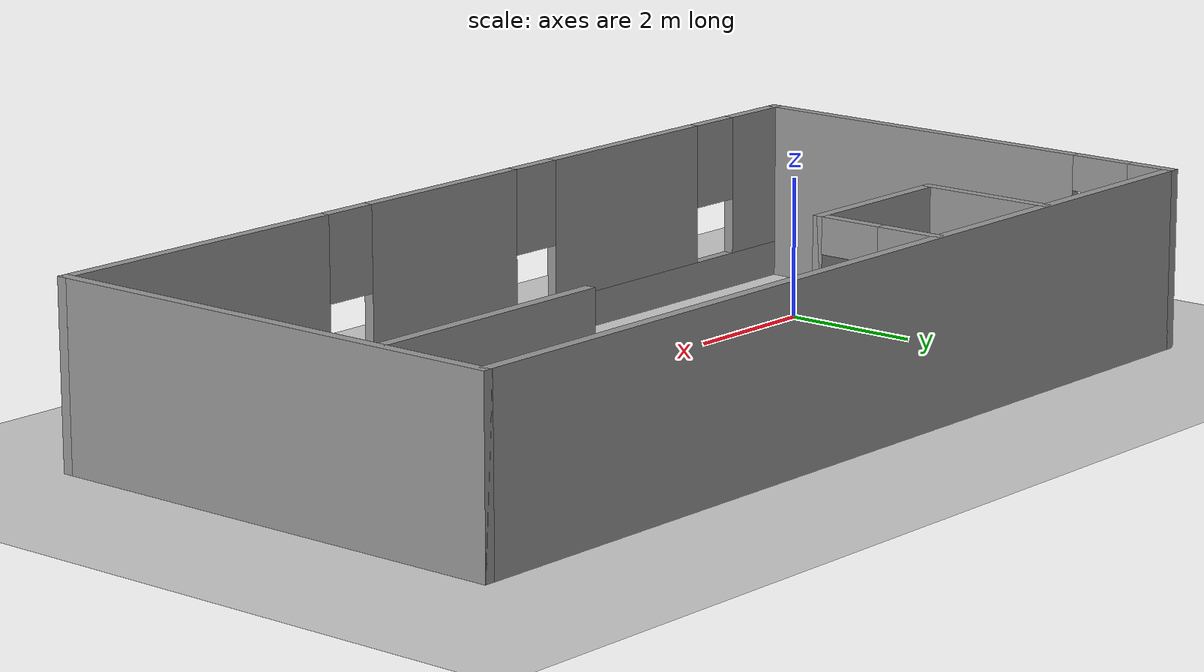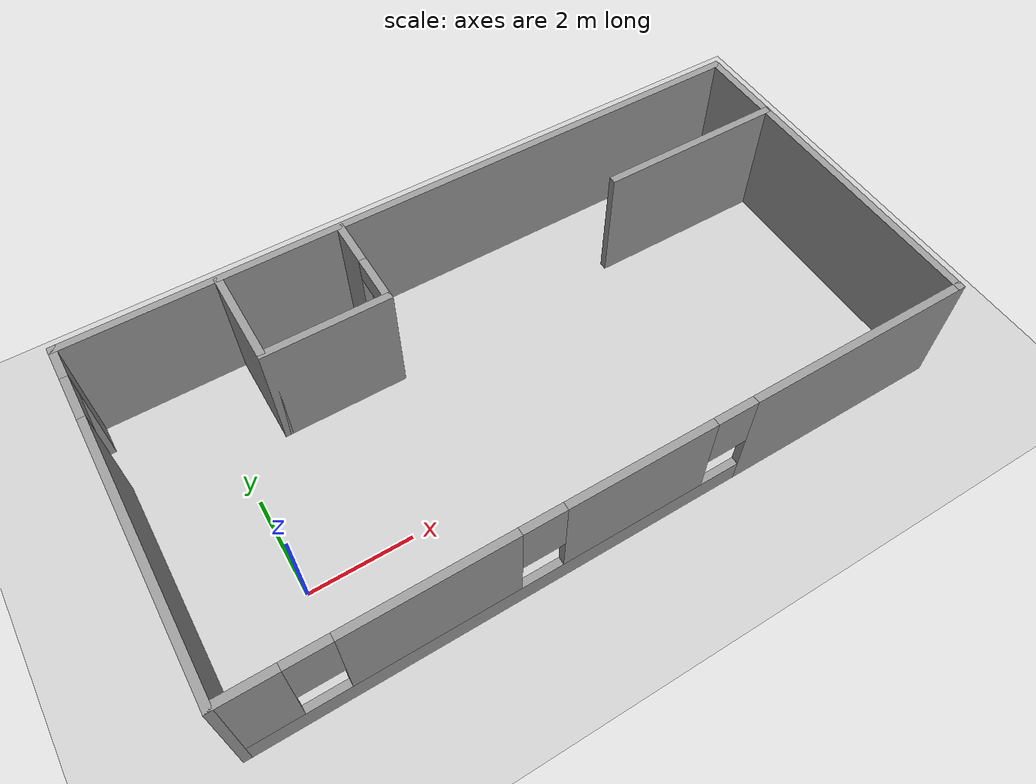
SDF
<sdf version="1.7">
 <world name="default">
  <light name="sun" type="directional">
   <pose>0 0 10 0 -0 0</pose>
   <diffuse>0.8 0.8 0.8 1</diffuse>
   <specular>0.2 0.2 0.2 1</specular>
   <attenuation>
    <range>1000</range>
    <constant>0.9</constant>
    <linear>0.01</linear>
    <quadratic>0.001</quadratic>
   </attenuation>
   <direction>-0.5 0.1 -0.9</direction>
   <spot><inner_angle>0</inner_angle><outer_angle>0</outer_angle><falloff>0</falloff></spot>
  </light>
  <model name="ground_plane">
   <static>1</static>
   <link name="link">
    <collision name="collision">
     <geometry><plane><normal>0 0 1</normal><size>100 100</size></plane></geometry>
     <surface>
      <contact><collide_bitmask>65535</collide_bitmask></contact>
      <friction><ode><mu>100</mu><mu2>50</mu2></ode></friction>
     </surface>
    </collision>
    <visual name="visual">
     <cast_shadows>0</cast_shadows>
     <geometry><plane><normal>0 0 1</normal><size>100 100</size></plane></geometry>
     <material>
      <script><uri>file://media/materials/scripts/gazebo.material</uri><name>Gazebo/Grey</name></script>
     </material>
    </visual>
   </link>
  </model>
  <gravity>0 0 -9.8</gravity>
  <magnetic_field>6e-06 2.3e-05 -4.2e-05</magnetic_field>
  <atmosphere type="adiabatic"/>
  <physics type="ode">
   <max_step_size>0.001</max_step_size>
   <real_time_factor>1</real_time_factor>
   <real_time_update_rate>1000</real_time_update_rate>
  </physics>
  <scene><ambient>0.4 0.4 0.4 1</ambient><background>0.7 0.7 0.7 1</background><shadows>1</shadows></scene>
  <audio><device>default</device></audio>
  <spherical_coordinates>
   <surface_model>EARTH_WGS84</surface_model>
   <latitude_deg>0</latitude_deg>
   <longitude_deg>0</longitude_deg>
   <elevation>0</elevation>
   <heading_deg>0</heading_deg>
  </spherical_coordinates>
  <model name="mapss">
   <pose>5.01979 1.54624 0 0 -0 0</pose>
   <link name="Wall_0">
    <pose>-6.925 0 0 0 -0 1.5708</pose>
    <visual name="Wall_0_Visual_0">
     <pose>-0.808769 0 1.25 0 -0 0</pose>
     <geometry><box><size>5.38246 0.15 2.5</size></box></geometry>
     <material>
      <script><uri>file://media/materials/scripts/gazebo.material</uri><name>Gazebo/Grey</name></script>
      <ambient>1 1 1 1</ambient>
     </material>
     <meta><layer>0</layer></meta>
    </visual>
    <collision name="Wall_0_Collision_0">
     <geometry><box><size>5.38246 0.15 2.5</size></box></geometry>
     <pose>-0.808769 0 1.25 0 -0 0</pose>
    </collision>
    <visual name="Wall_0_Visual_1">
     <pose>3.14123 0 1.25 0 -0 0</pose>
     <geometry><box><size>0.717538 0.15 2.5</size></box></geometry>
     <material>
      <script><uri>file://media/materials/scripts/gazebo.material</uri><name>Gazebo/Grey</name></script>
      <ambient>1 1 1 1</ambient>
     </material>
     <meta><layer>0</layer></meta>
    </visual>
    <collision name="Wall_0_Collision_1">
     <geometry><box><size>0.717538 0.15 2.5</size></box></geometry>
     <pose>3.14123 0 1.25 0 -0 0</pose>
    </collision>
    <visual name="Wall_0_Visual_2">
     <pose>2.33246 0 2.25 0 -0 0</pose>
     <geometry><box><size>0.9 0.15 0.5</size></box></geometry>
     <material>
      <script><uri>file://media/materials/scripts/gazebo.material</uri><name>Gazebo/Grey</name></script>
      <ambient>1 1 1 1</ambient>
     </material>
     <meta><layer>0</layer></meta>
    </visual>
    <collision name="Wall_0_Collision_2">
     <geometry><box><size>0.9 0.15 0.5</size></box></geometry>
     <pose>2.33246 0 2.25 0 -0 0</pose>
    </collision>
   </link>
   <link name="Wall_1">
    <collision name="Wall_1_Collision">
     <geometry><box><size>14 0.15 2.5</size></box></geometry>
     <pose>0 0 1.25 0 -0 0</pose>
    </collision>
    <visual name="Wall_1_Visual">
     <pose>0 0 1.25 0 -0 0</pose>
     <geometry><box><size>14 0.15 2.5</size></box></geometry>
     <material>
      <script><uri>file://media/materials/scripts/gazebo.material</uri><name>Gazebo/Grey</name></script>
      <ambient>1 1 1 1</ambient>
     </material>
     <meta><layer>0</layer></meta>
    </visual>
    <pose>0 3.425 0 0 -0 0</pose>
   </link>
   <link name="Wall_2">
    <collision name="Wall_2_Collision">
     <geometry><box><size>7 0.15 2.5</size></box></geometry>
     <pose>0 0 1.25 0 -0 0</pose>
    </collision>
    <visual name="Wall_2_Visual">
     <pose>0 0 1.25 0 -0 0</pose>
     <geometry><box><size>7 0.15 2.5</size></box></geometry>
     <material>
      <script><uri>file://media/materials/scripts/gazebo.material</uri><name>Gazebo/Grey</name></script>
      <ambient>1 1 1 1</ambient>
     </material>
     <meta><layer>0</layer></meta>
    </visual>
    <pose>6.925 0 0 0 -0 -1.5708</pose>
   </link>
   <link name="Wall_3">
    <pose>0 -3.425 0 0 -0 3.14159</pose>
    <visual name="Wall_3_Visual_0">
     <pose>-4.71794 0 1.25 0 -0 0</pose>
     <geometry><box><size>4.56412 0.15 2.5</size></box></geometry>
     <material>
      <script><uri>file://media/materials/scripts/gazebo.material</uri><name>Gazebo/Grey</name></script>
      <ambient>1 1 1 1</ambient>
     </material>
     <meta><layer>0</layer></meta>
    </visual>
    <collision name="Wall_3_Collision_0">
     <geometry><box><size>4.56412 0.15 2.5</size></box></geometry>
     <pose>-4.71794 0 1.25 0 -0 0</pose>
    </collision>
    <visual name="Wall_3_Visual_1">
     <pose>2.28206 0 0.25 0 -0 0</pose>
     <geometry><box><size>9.43588 0.15 0.5</size></box></geometry>
     <material>
      <script><uri>file://media/materials/scripts/gazebo.material</uri><name>Gazebo/Grey</name></script>
      <ambient>1 1 1 1</ambient>
     </material>
     <meta><layer>0</layer></meta>
    </visual>
    <collision name="Wall_3_Collision_1">
     <geometry><box><size>9.43588 0.15 0.5</size></box></geometry>
     <pose>2.28206 0 0.25 0 -0 0</pose>
    </collision>
    <visual name="Wall_3_Visual_2">
     <pose>-0.216912 0 1.5 0 -0 0</pose>
     <geometry><box><size>2.83793 0.15 2</size></box></geometry>
     <material>
      <script><uri>file://media/materials/scripts/gazebo.material</uri><name>Gazebo/Grey</name></script>
      <ambient>1 1 1 1</ambient>
     </material>
     <meta><layer>0</layer></meta>
    </visual>
    <collision name="Wall_3_Collision_2">
     <geometry><box><size>2.83793 0.15 2</size></box></geometry>
     <pose>-0.216912 0 1.5 0 -0 0</pose>
    </collision>
    <visual name="Wall_3_Visual_3">
     <pose>3.53471 0 1.5 0 -0 0</pose>
     <geometry><box><size>3.0653 0.15 2</size></box></geometry>
     <material>
      <script><uri>file://media/materials/scripts/gazebo.material</uri><name>Gazebo/Grey</name></script>
      <ambient>1 1 1 1</ambient>
     </material>
     <meta><layer>0</layer></meta>
    </visual>
    <collision name="Wall_3_Collision_3">
     <geometry><box><size>3.0653 0.15 2</size></box></geometry>
     <pose>3.53471 0 1.5 0 -0 0</pose>
    </collision>
    <visual name="Wall_3_Visual_4">
     <pose>6.43368 0 1.5 0 -0 0</pose>
     <geometry><box><size>1.13264 0.15 2</size></box></geometry>
     <material>
      <script><uri>file://media/materials/scripts/gazebo.material</uri><name>Gazebo/Grey</name></script>
      <ambient>1 1 1 1</ambient>
     </material>
     <meta><layer>0</layer></meta>
    </visual>
    <collision name="Wall_3_Collision_4">
     <geometry><box><size>1.13264 0.15 2</size></box></geometry>
     <pose>6.43368 0 1.5 0 -0 0</pose>
    </collision>
    <visual name="Wall_3_Visual_5">
     <pose>-2.03588 0 1.9 0 -0 0</pose>
     <geometry><box><size>0.8 0.15 1.2</size></box></geometry>
     <material>
      <script><uri>file://media/materials/scripts/gazebo.material</uri><name>Gazebo/Grey</name></script>
      <ambient>1 1 1 1</ambient>
     </material>
     <meta><layer>0</layer></meta>
    </visual>
    <collision name="Wall_3_Collision_5">
     <geometry><box><size>0.8 0.15 1.2</size></box></geometry>
     <pose>-2.03588 0 1.9 0 -0 0</pose>
    </collision>
    <visual name="Wall_3_Visual_6">
     <pose>1.60206 0 1.9 0 -0 0</pose>
     <geometry><box><size>0.8 0.15 1.2</size></box></geometry>
     <material>
      <script><uri>file://media/materials/scripts/gazebo.material</uri><name>Gazebo/Grey</name></script>
      <ambient>1 1 1 1</ambient>
     </material>
     <meta><layer>0</layer></meta>
    </visual>
    <collision name="Wall_3_Collision_6">
     <geometry><box><size>0.8 0.15 1.2</size></box></geometry>
     <pose>1.60206 0 1.9 0 -0 0</pose>
    </collision>
    <visual name="Wall_3_Visual_7">
     <pose>5.46736 0 1.9 0 -0 0</pose>
     <geometry><box><size>0.8 0.15 1.2</size></box></geometry>
     <material>
      <script><uri>file://media/materials/scripts/gazebo.material</uri><name>Gazebo/Grey</name></script>
      <ambient>1 1 1 1</ambient>
     </material>
     <meta><layer>0</layer></meta>
    </visual>
    <collision name="Wall_3_Collision_7">
     <geometry><box><size>0.8 0.15 1.2</size></box></geometry>
     <pose>5.46736 0 1.9 0 -0 0</pose>
    </collision>
   </link>
   <link name="Wall_5">
    <collision name="Wall_5_Collision">
     <geometry><box><size>2 0.15 2.5</size></box></geometry>
     <pose>0 0 1.25 0 -0 0</pose>
    </collision>
    <visual name="Wall_5_Visual">
     <pose>0 0 1.25 0 -0 0</pose>
     <geometry><box><size>2 0.15 2.5</size></box></geometry>
     <material>
      <script><uri>file://media/materials/scripts/gazebo.material</uri><name>Gazebo/Grey</name></script>
      <ambient>1 1 1 1</ambient>
     </material>
     <meta><layer>0</layer></meta>
    </visual>
    <pose>-3.99819 2.45687 0 0 -0 -1.5708</pose>
   </link>
   <link name="Wall_6">
    <collision name="Wall_6_Collision">
     <geometry><box><size>2.5 0.15 2.5</size></box></geometry>
     <pose>0 0 1.25 0 -0 0</pose>
    </collision>
    <visual name="Wall_6_Visual">
     <pose>0 0 1.25 0 -0 0</pose>
     <geometry><box><size>2.5 0.15 2.5</size></box></geometry>
     <material>
      <script><uri>file://media/materials/scripts/gazebo.material</uri><name>Gazebo/Grey</name></script>
      <ambient>1 1 1 1</ambient>
     </material>
     <meta><layer>0</layer></meta>
    </visual>
    <pose>-2.82319 1.53187 0 0 -0 0</pose>
   </link>
   <link name="Wall_7">
    <pose>-1.64819 2.45687 0 0 -0 1.5708</pose>
    <visual name="Wall_7_Visual_0">
     <pose>-0.927122 0 1.25 0 -0 0</pose>
     <geometry><box><size>0.145755 0.15 2.5</size></box></geometry>
     <material>
      <script><uri>file://media/materials/scripts/gazebo.material</uri><name>Gazebo/Grey</name></script>
      <ambient>1 1 1 1</ambient>
     </material>
     <meta><layer>0</layer></meta>
    </visual>
    <collision name="Wall_7_Collision_0">
     <geometry><box><size>0.145755 0.15 2.5</size></box></geometry>
     <pose>-0.927122 0 1.25 0 -0 0</pose>
    </collision>
    <visual name="Wall_7_Visual_1">
     <pose>0.522878 0 1.25 0 -0 0</pose>
     <geometry><box><size>0.954245 0.15 2.5</size></box></geometry>
     <material>
      <script><uri>file://media/materials/scripts/gazebo.material</uri><name>Gazebo/Grey</name></script>
      <ambient>1 1 1 1</ambient>
     </material>
     <meta><layer>0</layer></meta>
    </visual>
    <collision name="Wall_7_Collision_1">
     <geometry><box><size>0.954245 0.15 2.5</size></box></geometry>
     <pose>0.522878 0 1.25 0 -0 0</pose>
    </collision>
    <visual name="Wall_7_Visual_2">
     <pose>-0.404245 0 2.25 0 -0 0</pose>
     <geometry><box><size>0.9 0.15 0.5</size></box></geometry>
     <material>
      <script><uri>file://media/materials/scripts/gazebo.material</uri><name>Gazebo/Grey</name></script>
      <ambient>1 1 1 1</ambient>
     </material>
     <meta><layer>0</layer></meta>
    </visual>
    <collision name="Wall_7_Collision_2">
     <geometry><box><size>0.9 0.15 0.5</size></box></geometry>
     <pose>-0.404245 0 2.25 0 -0 0</pose>
    </collision>
   </link>
   <link name="Wall_9">
    <collision name="Wall_9_Collision">
     <geometry><box><size>3.75 0.15 2.5</size></box></geometry>
     <pose>0 0 1.25 0 -0 0</pose>
    </collision>
    <visual name="Wall_9_Visual">
     <pose>0 0 1.25 0 -0 0</pose>
     <geometry><box><size>3.75 0.15 2.5</size></box></geometry>
     <material>
      <script><uri>file://media/materials/scripts/gazebo.material</uri><name>Gazebo/Grey</name></script>
      <ambient>1 1 1 1</ambient>
     </material>
     <meta><layer>0</layer></meta>
    </visual>
    <pose>5.09811 1.80776 0 0 -0 3.14159</pose>
   </link>
   <static>1</static>
  </model>
 </world>
</sdf>
